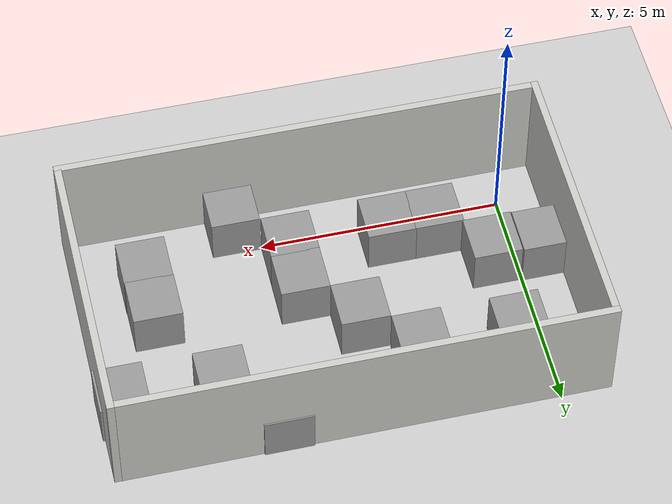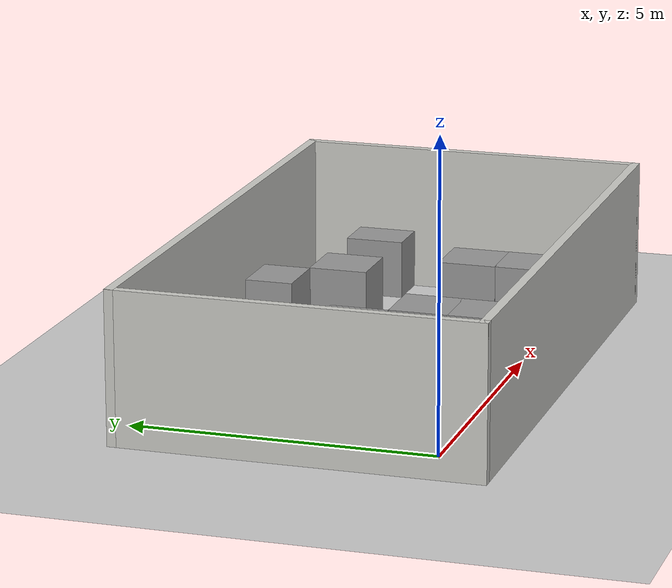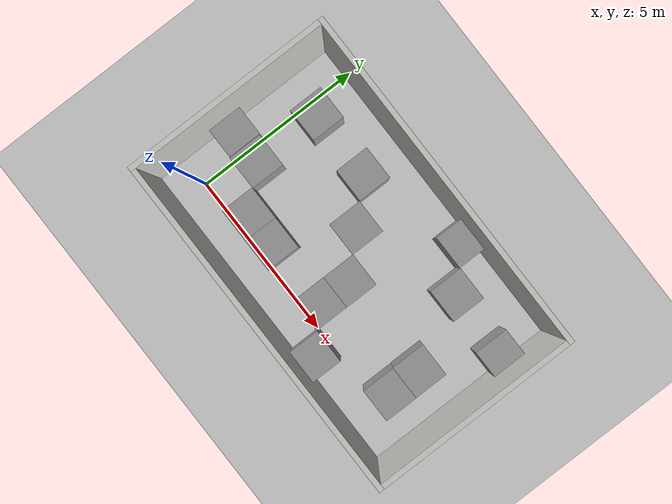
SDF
<sdf version="1.7">
 <world name="default">
  <light name="sun" type="directional">
   <pose>0 0 10 0 -0 0</pose>
   <diffuse>0.8 0.8 0.8 1</diffuse>
   <specular>0.2 0.2 0.2 1</specular>
   <attenuation>
    <range>1000</range>
    <constant>0.9</constant>
    <linear>0.01</linear>
    <quadratic>0.001</quadratic>
   </attenuation>
   <direction>-0.5 0.1 -0.9</direction>
   <spot><inner_angle>0</inner_angle><outer_angle>0</outer_angle><falloff>0</falloff></spot>
  </light>
  <model name="ground_plane">
   <static>1</static>
   <link name="link">
    <collision name="collision">
     <geometry><plane><normal>0 0 1</normal><size>100 100</size></plane></geometry>
     <surface><friction><ode><mu>100</mu><mu2>50</mu2></ode></friction></surface>
    </collision>
    <visual name="visual">
     <cast_shadows>0</cast_shadows>
     <geometry><plane><normal>0 0 1</normal><size>100 100</size></plane></geometry>
     <material>
      <script><uri>file://media/materials/scripts/gazebo.material</uri><name>Gazebo/Grey</name></script>
     </material>
    </visual>
   </link>
  </model>
  <gravity>0 0 -9.8</gravity>
  <magnetic_field>6e-06 2.3e-05 -4.2e-05</magnetic_field>
  <atmosphere type="adiabatic"/>
  <physics type="ode">
   <max_step_size>0.001</max_step_size>
   <real_time_factor>1</real_time_factor>
   <real_time_update_rate>1000</real_time_update_rate>
  </physics>
  <scene><ambient>0.4 0.4 0.4 1</ambient><background>0.7 0.7 0.7 1</background><shadows>1</shadows></scene>
  <spherical_coordinates>
   <surface_model>EARTH_WGS84</surface_model>
   <latitude_deg>0</latitude_deg>
   <longitude_deg>0</longitude_deg>
   <elevation>0</elevation>
   <heading_deg>0</heading_deg>
  </spherical_coordinates>
  <model name="Myhouse_1">
   <pose>3.96776 1.9633 0 0 -0 0</pose>
   <link name="Wall_10">
    <collision name="Wall_10_Collision">
     <geometry><box><size>10 0.15 2.5</size></box></geometry>
     <pose>0 0 1.25 0 -0 0</pose>
    </collision>
    <visual name="Wall_10_Visual">
     <pose>0 0 1.25 0 -0 0</pose>
     <geometry><box><size>10 0.15 2.5</size></box></geometry>
     <material>
      <script><uri>file://media/materials/scripts/gazebo.material</uri><name>Gazebo/CeilingTiled</name></script>
      <ambient>1 1 1 1</ambient>
     </material>
     <meta><layer>0</layer></meta>
    </visual>
    <pose>-0 2.925 0 0 -0 3.14159</pose>
   </link>
   <link name="Wall_11">
    <collision name="Wall_11_Collision">
     <geometry><box><size>6 0.15 2.5</size></box></geometry>
     <pose>0 0 1.25 0 -0 0</pose>
    </collision>
    <visual name="Wall_11_Visual">
     <pose>0 0 1.25 0 -0 0</pose>
     <geometry><box><size>6 0.15 2.5</size></box></geometry>
     <material>
      <script><uri>file://media/materials/scripts/gazebo.material</uri><name>Gazebo/CeilingTiled</name></script>
      <ambient>1 1 1 1</ambient>
     </material>
     <meta><layer>0</layer></meta>
    </visual>
    <pose>-4.925 -0 0 0 -0 -1.5708</pose>
   </link>
   <link name="Wall_8">
    <collision name="Wall_8_Collision">
     <geometry><box><size>10 0.15 2.5</size></box></geometry>
     <pose>0 0 1.25 0 -0 0</pose>
    </collision>
    <visual name="Wall_8_Visual">
     <pose>0 0 1.25 0 -0 0</pose>
     <geometry><box><size>10 0.15 2.5</size></box></geometry>
     <material>
      <script><uri>file://media/materials/scripts/gazebo.material</uri><name>Gazebo/CeilingTiled</name></script>
      <ambient>1 1 1 1</ambient>
     </material>
     <meta><layer>0</layer></meta>
    </visual>
    <pose>-0 -2.925 0 0 -0 0</pose>
   </link>
   <link name="Wall_9">
    <collision name="Wall_9_Collision">
     <geometry><box><size>6 0.15 2.5</size></box></geometry>
     <pose>0 0 1.25 0 -0 0</pose>
    </collision>
    <visual name="Wall_9_Visual">
     <pose>0 0 1.25 0 -0 0</pose>
     <geometry><box><size>6 0.15 2.5</size></box></geometry>
     <material>
      <script><uri>file://media/materials/scripts/gazebo.material</uri><name>Gazebo/CeilingTiled</name></script>
      <ambient>1 1 1 1</ambient>
     </material>
     <meta><layer>0</layer></meta>
    </visual>
    <pose>4.925 -0 0 0 -0 1.5708</pose>
   </link>
   <static>1</static>
  </model>
  <model name="unit_box">
   <pose>-0.501123 1.51228 0.5 0 -0 0</pose>
   <link name="link">
    <inertial>
     <mass>1</mass>
     <inertia>
      <ixx>0.166667</ixx>
      <ixy>0</ixy>
      <ixz>0</ixz>
      <iyy>0.166667</iyy>
      <iyz>0</iyz>
      <izz>0.166667</izz>
     </inertia>
    </inertial>
    <collision name="collision"><geometry><box><size>1 1 1</size></box></geometry></collision>
    <visual name="visual">
     <geometry><box><size>1 1 1</size></box></geometry>
     <material>
      <script><name>Gazebo/Grey</name><uri>file://media/materials/scripts/gazebo.material</uri></script>
     </material>
    </visual>
   </link>
  </model>
  <model name="unit_box_clone">
   <pose>0.518477 1.49041 0.5 0 -0 0</pose>
   <link name="link">
    <inertial>
     <mass>1</mass>
     <inertia>
      <ixx>0.166667</ixx>
      <ixy>0</ixy>
      <ixz>0</ixz>
      <iyy>0.166667</iyy>
      <iyz>0</iyz>
      <izz>0.166667</izz>
     </inertia>
    </inertial>
    <collision name="collision"><geometry><box><size>1 1 1</size></box></geometry></collision>
    <visual name="visual">
     <geometry><box><size>1 1 1</size></box></geometry>
     <material>
      <script><name>Gazebo/Grey</name><uri>file://media/materials/scripts/gazebo.material</uri></script>
     </material>
    </visual>
   </link>
  </model>
  <model name="unit_box_clone_0">
   <pose>1.48822 0.487819 0.5 0 -0 0</pose>
   <link name="link">
    <inertial>
     <mass>1</mass>
     <inertia>
      <ixx>0.166667</ixx>
      <ixy>0</ixy>
      <ixz>0</ixz>
      <iyy>0.166667</iyy>
      <iyz>0</iyz>
      <izz>0.166667</izz>
     </inertia>
    </inertial>
    <collision name="collision"><geometry><box><size>1 1 1</size></box></geometry></collision>
    <visual name="visual">
     <geometry><box><size>1 1 1</size></box></geometry>
     <material>
      <script><name>Gazebo/Grey</name><uri>file://media/materials/scripts/gazebo.material</uri></script>
     </material>
    </visual>
   </link>
  </model>
  <model name="unit_box_clone_1">
   <pose>2.47156 0.488455 0.5 0 -0 0</pose>
   <link name="link">
    <inertial>
     <mass>1</mass>
     <inertia>
      <ixx>0.166667</ixx>
      <ixy>0</ixy>
      <ixz>0</ixz>
      <iyy>0.166667</iyy>
      <iyz>0</iyz>
      <izz>0.166667</izz>
     </inertia>
    </inertial>
    <collision name="collision"><geometry><box><size>1 1 1</size></box></geometry></collision>
    <visual name="visual">
     <geometry><box><size>1 1 1</size></box></geometry>
     <material>
      <script><name>Gazebo/Grey</name><uri>file://media/materials/scripts/gazebo.material</uri></script>
     </material>
    </visual>
   </link>
  </model>
  <model name="unit_box_clone_2">
   <pose>4.49987 0.523181 0.5 0 -0 0</pose>
   <link name="link">
    <inertial>
     <mass>1</mass>
     <inertia>
      <ixx>0.166667</ixx>
      <ixy>0</ixy>
      <ixz>0</ixz>
      <iyy>0.166667</iyy>
      <iyz>0</iyz>
      <izz>0.166667</izz>
     </inertia>
    </inertial>
    <collision name="collision"><geometry><box><size>1 1 1</size></box></geometry></collision>
    <visual name="visual">
     <geometry><box><size>1 1 1</size></box></geometry>
     <material>
      <script><name>Gazebo/Grey</name><uri>file://media/materials/scripts/gazebo.material</uri></script>
     </material>
    </visual>
   </link>
  </model>
  <model name="unit_box_clone_3">
   <pose>5.51327 -0.472753 0.5 0 -0 0</pose>
   <link name="link">
    <inertial>
     <mass>1</mass>
     <inertia>
      <ixx>0.166667</ixx>
      <ixy>0</ixy>
      <ixz>0</ixz>
      <iyy>0.166667</iyy>
      <iyz>0</iyz>
      <izz>0.166667</izz>
     </inertia>
    </inertial>
    <collision name="collision"><geometry><box><size>1 1 1</size></box></geometry></collision>
    <visual name="visual">
     <geometry><box><size>1 1 1</size></box></geometry>
     <material>
      <script><name>Gazebo/Grey</name><uri>file://media/materials/scripts/gazebo.material</uri></script>
     </material>
    </visual>
   </link>
  </model>
  <model name="unit_box_clone_4">
   <pose>4.50216 1.50193 0.5 0 -0 0</pose>
   <link name="link">
    <inertial>
     <mass>1</mass>
     <inertia>
      <ixx>0.166667</ixx>
      <ixy>0</ixy>
      <ixz>0</ixz>
      <iyy>0.166667</iyy>
      <iyz>0</iyz>
      <izz>0.166667</izz>
     </inertia>
    </inertial>
    <collision name="collision"><geometry><box><size>1 1 1</size></box></geometry></collision>
    <visual name="visual">
     <geometry><box><size>1 1 1</size></box></geometry>
     <material>
      <script><name>Gazebo/Grey</name><uri>file://media/materials/scripts/gazebo.material</uri></script>
     </material>
    </visual>
   </link>
  </model>
  <model name="unit_box_clone_6">
   <pose>2.49981 3.50687 0.5 0 -0 0</pose>
   <link name="link">
    <inertial>
     <mass>1</mass>
     <inertia>
      <ixx>0.166667</ixx>
      <ixy>0</ixy>
      <ixz>0</ixz>
      <iyy>0.166667</iyy>
      <iyz>0</iyz>
      <izz>0.166667</izz>
     </inertia>
    </inertial>
    <collision name="collision"><geometry><box><size>1 1 1</size></box></geometry></collision>
    <visual name="visual">
     <geometry><box><size>1 1 1</size></box></geometry>
     <material>
      <script><name>Gazebo/Grey</name><uri>file://media/materials/scripts/gazebo.material</uri></script>
     </material>
    </visual>
   </link>
  </model>
  <model name="unit_box_clone_5">
   <pose>3.50203 2.49435 0.5 0 -0 0</pose>
   <link name="link">
    <inertial>
     <mass>1</mass>
     <inertia>
      <ixx>0.166667</ixx>
      <ixy>0</ixy>
      <ixz>0</ixz>
      <iyy>0.166667</iyy>
      <iyz>0</iyz>
      <izz>0.166667</izz>
     </inertia>
    </inertial>
    <collision name="collision"><geometry><box><size>1 1 1</size></box></geometry></collision>
    <visual name="visual">
     <geometry><box><size>1 1 1</size></box></geometry>
     <material>
      <script><name>Gazebo/Grey</name><uri>file://media/materials/scripts/gazebo.material</uri></script>
     </material>
    </visual>
   </link>
  </model>
  <model name="unit_box_clone_6_clone">
   <pose>0.505492 3.51338 0.5 0 -0 0</pose>
   <link name="link">
    <inertial>
     <mass>1</mass>
     <inertia>
      <ixx>0.166667</ixx>
      <ixy>0</ixy>
      <ixz>0</ixz>
      <iyy>0.166667</iyy>
      <iyz>0</iyz>
      <izz>0.166667</izz>
     </inertia>
    </inertial>
    <collision name="collision"><geometry><box><size>1 1 1</size></box></geometry></collision>
    <visual name="visual">
     <geometry><box><size>1 1 1</size></box></geometry>
     <material>
      <script><name>Gazebo/Grey</name><uri>file://media/materials/scripts/gazebo.material</uri></script>
     </material>
    </visual>
   </link>
  </model>
  <model name="unit_box_clone_6_clone_0">
   <pose>5.49913 4.49749 0.5 0 -0 0</pose>
   <link name="link">
    <inertial>
     <mass>1</mass>
     <inertia>
      <ixx>0.166667</ixx>
      <ixy>0</ixy>
      <ixz>0</ixz>
      <iyy>0.166667</iyy>
      <iyz>0</iyz>
      <izz>0.166667</izz>
     </inertia>
    </inertial>
    <collision name="collision"><geometry><box><size>1 1 1</size></box></geometry></collision>
    <visual name="visual">
     <geometry><box><size>1 1 1</size></box></geometry>
     <material>
      <script><name>Gazebo/Grey</name><uri>file://media/materials/scripts/gazebo.material</uri></script>
     </material>
    </visual>
   </link>
  </model>
  <model name="unit_box_clone_6_clone_1">
   <pose>6.51572 3.51029 0.5 0 -0 0</pose>
   <link name="link">
    <inertial>
     <mass>1</mass>
     <inertia>
      <ixx>0.166667</ixx>
      <ixy>0</ixy>
      <ixz>0</ixz>
      <iyy>0.166667</iyy>
      <iyz>0</iyz>
      <izz>0.166667</izz>
     </inertia>
    </inertial>
    <collision name="collision"><geometry><box><size>1 1 1</size></box></geometry></collision>
    <visual name="visual">
     <geometry><box><size>1 1 1</size></box></geometry>
     <material>
      <script><name>Gazebo/Grey</name><uri>file://media/materials/scripts/gazebo.material</uri></script>
     </material>
    </visual>
   </link>
  </model>
  <model name="unit_box_clone_6_clone_2">
   <pose>7.49135 1.5061 0.5 0 -0 0</pose>
   <link name="link">
    <inertial>
     <mass>1</mass>
     <inertia>
      <ixx>0.166667</ixx>
      <ixy>0</ixy>
      <ixz>0</ixz>
      <iyy>0.166667</iyy>
      <iyz>0</iyz>
      <izz>0.166667</izz>
     </inertia>
    </inertial>
    <collision name="collision"><geometry><box><size>1 1 1</size></box></geometry></collision>
    <visual name="visual">
     <geometry><box><size>1 1 1</size></box></geometry>
     <material>
      <script><name>Gazebo/Grey</name><uri>file://media/materials/scripts/gazebo.material</uri></script>
     </material>
    </visual>
   </link>
  </model>
  <model name="unit_box_clone_6_clone_3">
   <pose>7.49959 0.522294 0.5 0 -0 0</pose>
   <link name="link">
    <inertial>
     <mass>1</mass>
     <inertia>
      <ixx>0.166667</ixx>
      <ixy>0</ixy>
      <ixz>0</ixz>
      <iyy>0.166667</iyy>
      <iyz>0</iyz>
      <izz>0.166667</izz>
     </inertia>
    </inertial>
    <collision name="collision"><geometry><box><size>1 1 1</size></box></geometry></collision>
    <visual name="visual">
     <geometry><box><size>1 1 1</size></box></geometry>
     <material>
      <script><name>Gazebo/Grey</name><uri>file://media/materials/scripts/gazebo.material</uri></script>
     </material>
    </visual>
   </link>
  </model>
  <model name="unit_box_clone_6_clone_4">
   <pose>8.51369 3.4716 0.5 0 -0 0</pose>
   <link name="link">
    <inertial>
     <mass>1</mass>
     <inertia>
      <ixx>0.166667</ixx>
      <ixy>0</ixy>
      <ixz>0</ixz>
      <iyy>0.166667</iyy>
      <iyz>0</iyz>
      <izz>0.166667</izz>
     </inertia>
    </inertial>
    <collision name="collision"><geometry><box><size>1 1 1</size></box></geometry></collision>
    <visual name="visual">
     <geometry><box><size>1 1 1</size></box></geometry>
     <material>
      <script><name>Gazebo/Grey</name><uri>file://media/materials/scripts/gazebo.material</uri></script>
     </material>
    </visual>
   </link>
  </model>
 </world>
</sdf>
